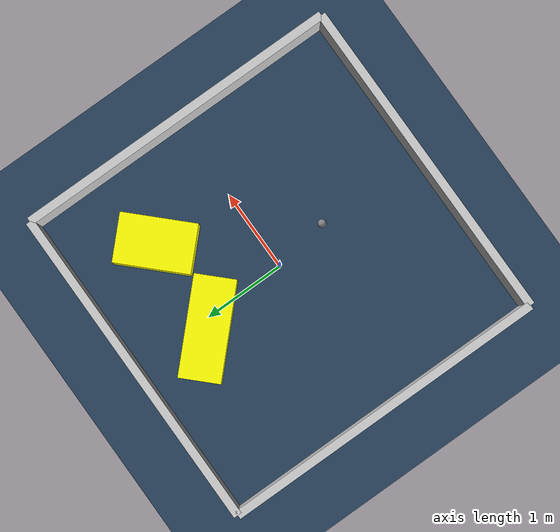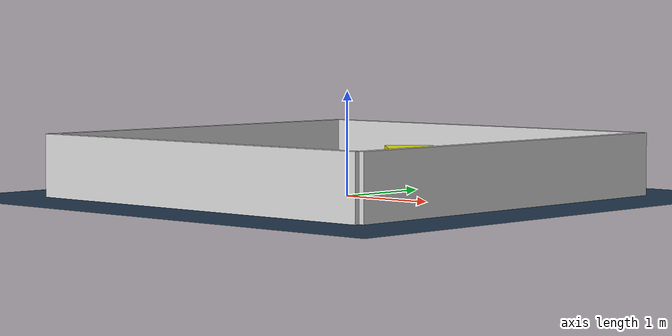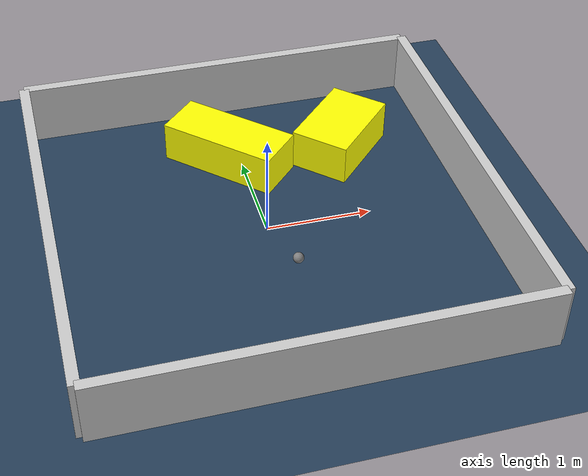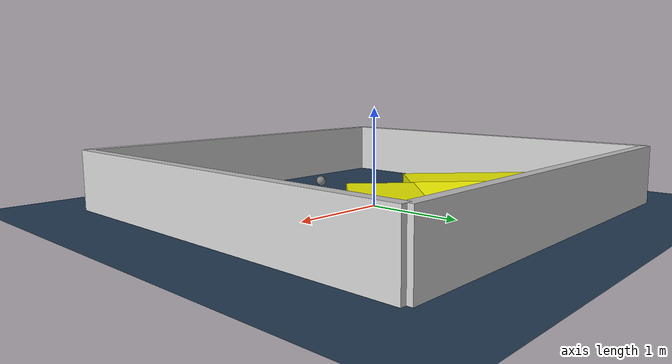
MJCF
<?xml version="1.0" ?>
<mujoco model="generated_environment">
  <option timestep="0.01" integrator="RK4" cone="elliptic"/>
  <default>
    <geom density="1"/>
  </default>
  <asset>
    <texture builtin="gradient" height="3072" rgb1="0.3 0.5 0.7" rgb2="0 0 0" type="skybox" width="512"/>
    <texture builtin="checker" height="300" mark="edge" markrgb="0.8 0.8 0.8" name="groundplane" rgb1="0.2 0.3 0.4" rgb2="0.1 0.2 0.3" type="2d" width="300"/>
    <material name="groundplane" reflectance="0.2" texrepeat="5 5" texture="groundplane" texuniform="true"/>
    <material name="robot" rgba="0.0 1.0 0.0 1"/>
  </asset>
  <worldbody>
    <light dir="0 0 -1" directional="true" pos="0 0 1.5"/>
    <geom condim="4" friction="1.0 0.005 0.001" material="groundplane" name="floor" size="0 0 0.05" type="plane"/>
    <body name="walls">
      <geom name="wall_1" condim="4" pos="-2.0 0.0 0.3" rgba="0.800000011920929 0.800000011920929 0.800000011920929 1.0" size="0.05 2.0 0.3" type="box"/>
      <geom name="wall_2" condim="4" pos="2.0 0.0 0.3" rgba="0.800000011920929 0.800000011920929 0.800000011920929 1.0" size="0.05 2.0 0.3" type="box"/>
      <geom name="wall_3" condim="4" pos="0.0 -2.0 0.3" rgba="0.800000011920929 0.800000011920929 0.800000011920929 1.0" size="2.0 0.05 0.3" type="box"/>
      <geom name="wall_4" condim="4" pos="0.0 2.0 0.3" rgba="0.800000011920929 0.800000011920929 0.800000011920929 1.0" size="2.0 0.05 0.3" type="box"/>
    </body>
    <body name="robot">
      <joint name="joint_x" type="slide" pos="0 0 0" axis="1 0 0"/>
      <joint name="joint_y" type="slide" pos="0 0 0" axis="0 1 0"/>
      <geom name="robot" type="sphere" pos="0.1094807967628042 -0.6678572488614576 0.2" size="0.05" mass="5." friction="1.0 0.005 0.0001" condim="4"/>
      <site name="sensor_ball"/>
    </body>
    <body name="obstacle_1_movable">
      <geom name="obstacle_1_movable" condim="4" pos="-0.11351027999209817 1.081329680442032 0.2" euler="0 0 225.74589468487778" friction="1.0 0.005 0.001" rgba="1 1 0 1" size="0.24656742453853903 0.5951564792544153 0.2" type="box" mass="0.1"/>
      <joint type="free"/>
    </body>
    <body name="obstacle_2_movable">
      <geom name="obstacle_2_movable" condim="4" pos="1.0115567701021386 1.0006991439936663 0.2" euler="0 0 225.72084983777975" friction="1.0 0.005 0.001" rgba="1 1 0 1" size="0.449555778952217 0.2915514090858372 0.2" type="box" mass="0.1"/>
      <joint type="free"/>
    </body>
  </worldbody>
  <actuator>
    <motor name="actuator_x" joint="joint_x" gear="1" ctrlrange="-1 1"/>
    <motor name="actuator_y" joint="joint_y" gear="1" ctrlrange="-1 1"/>
  </actuator>
</mujoco>
